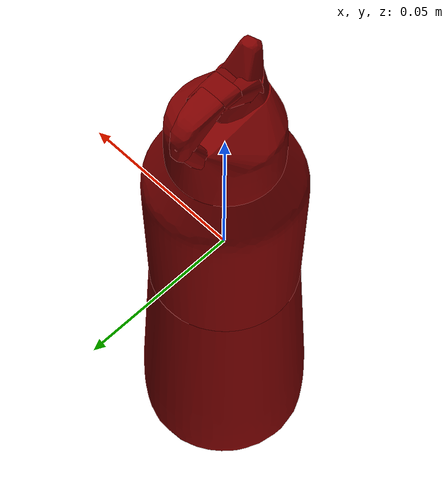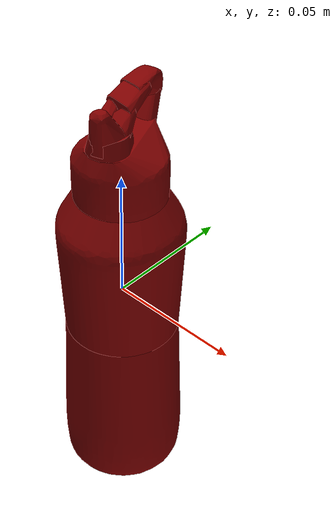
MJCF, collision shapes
<?xml version='1.0' encoding='utf-8'?>
<mujoco model="water_bottle_23">
  <asset>
    <mesh file="visual/model_normalized_0.obj" name="model_normalized_0_vis" scale="0.16500000000000004 0.16500000000000004 0.16500000000000004" refquat="0.7071067811865475 0.0 0.0 -0.7071067811865475" />
    <mesh file="visual/model_normalized_1.obj" name="model_normalized_1_vis" scale="0.16500000000000004 0.16500000000000004 0.16500000000000004" refquat="0.7071067811865475 0.0 0.0 -0.7071067811865475" />
    <mesh file="visual/model_normalized_2.obj" name="model_normalized_2_vis" scale="0.16500000000000004 0.16500000000000004 0.16500000000000004" refquat="0.7071067811865475 0.0 0.0 -0.7071067811865475" />
    <texture type="2d" name="image0" file="visual/image0.png" />
    <texture type="2d" name="image7" file="visual/image7.png" />
    <material name="Bottle" texture="image0" specular="0.5" shininess="0.25" />
    <material name="Pacifier" specular="0.5" shininess="0.25" rgba="0.800000 0.800000 0.800000 1.0" />
    <material name="material.003" texture="image7" specular="0.5" shininess="0.25" />
    <mesh file="collision/collision_mesh_collision_0.obj" name="water_collision_mesh_0" scale="0.16500000000000004 0.16500000000000004 0.16500000000000004" refquat="0.7071067811865475 0.0 0.0 -0.7071067811865475" />
    <mesh file="collision/collision_mesh_collision_1.obj" name="water_collision_mesh_1" scale="0.16500000000000004 0.16500000000000004 0.16500000000000004" refquat="0.7071067811865475 0.0 0.0 -0.7071067811865475" />
    <mesh file="collision/collision_mesh_collision_2.obj" name="water_collision_mesh_2" scale="0.16500000000000004 0.16500000000000004 0.16500000000000004" refquat="0.7071067811865475 0.0 0.0 -0.7071067811865475" />
    <mesh file="collision/collision_mesh_collision_3.obj" name="water_collision_mesh_3" scale="0.16500000000000004 0.16500000000000004 0.16500000000000004" refquat="0.7071067811865475 0.0 0.0 -0.7071067811865475" />
    <mesh file="collision/collision_mesh_collision_4.obj" name="water_collision_mesh_4" scale="0.16500000000000004 0.16500000000000004 0.16500000000000004" refquat="0.7071067811865475 0.0 0.0 -0.7071067811865475" />
    <mesh file="collision/collision_mesh_collision_5.obj" name="water_collision_mesh_5" scale="0.16500000000000004 0.16500000000000004 0.16500000000000004" refquat="0.7071067811865475 0.0 0.0 -0.7071067811865475" />
    <mesh file="collision/collision_mesh_collision_6.obj" name="water_collision_mesh_6" scale="0.16500000000000004 0.16500000000000004 0.16500000000000004" refquat="0.7071067811865475 0.0 0.0 -0.7071067811865475" />
    <mesh file="collision/collision_mesh_collision_7.obj" name="water_collision_mesh_7" scale="0.16500000000000004 0.16500000000000004 0.16500000000000004" refquat="0.7071067811865475 0.0 0.0 -0.7071067811865475" />
    <mesh file="collision/collision_mesh_collision_8.obj" name="water_collision_mesh_8" scale="0.16500000000000004 0.16500000000000004 0.16500000000000004" refquat="0.7071067811865475 0.0 0.0 -0.7071067811865475" />
    <mesh file="collision/collision_mesh_collision_9.obj" name="water_collision_mesh_9" scale="0.16500000000000004 0.16500000000000004 0.16500000000000004" refquat="0.7071067811865475 0.0 0.0 -0.7071067811865475" />
    </asset>
  <default>
    <default class="region">
      <geom group="1" conaffinity="0" contype="0" rgba="0 1 0 0" />
      </default>
    <default class="collision">
      <geom group="0" rgba="0.5 0 0 0.5" density="1000.0" />
      </default>
    </default>
  <worldbody>
    <body>
      <body name="object">
        <geom solimp="0.998 0.998 0.001" solref="0.001 1" density="100" friction="0.95 0.3 0.1" type="mesh" mesh="model_normalized_0_vis" conaffinity="0" contype="0" group="1" material="material.003" />
        <geom solimp="0.998 0.998 0.001" solref="0.001 1" density="100" friction="0.95 0.3 0.1" type="mesh" mesh="model_normalized_1_vis" conaffinity="0" contype="0" group="1" material="Pacifier" />
        <geom solimp="0.998 0.998 0.001" solref="0.001 1" density="100" friction="0.95 0.3 0.1" type="mesh" mesh="model_normalized_2_vis" conaffinity="0" contype="0" group="1" material="Bottle" />
        <geom class="region" name="reg_bbox" type="box" pos="1.897499999917174e-08 0.00010016407500000153 -0.00019447725000000526" size="0.022250213700000004 0.02246619705000001 0.08230550955000002" />
        <geom mesh="water_collision_mesh_0" type="mesh" class="collision" />
        <geom mesh="water_collision_mesh_1" type="mesh" class="collision" />
        <geom mesh="water_collision_mesh_2" type="mesh" class="collision" />
        <geom mesh="water_collision_mesh_3" type="mesh" class="collision" />
        <geom mesh="water_collision_mesh_4" type="mesh" class="collision" />
        <geom mesh="water_collision_mesh_5" type="mesh" class="collision" />
        <geom mesh="water_collision_mesh_6" type="mesh" class="collision" />
        <geom mesh="water_collision_mesh_7" type="mesh" class="collision" />
        <geom mesh="water_collision_mesh_8" type="mesh" class="collision" />
        <geom mesh="water_collision_mesh_9" type="mesh" class="collision" />
        </body>
      </body>
    </worldbody>
  </mujoco>
